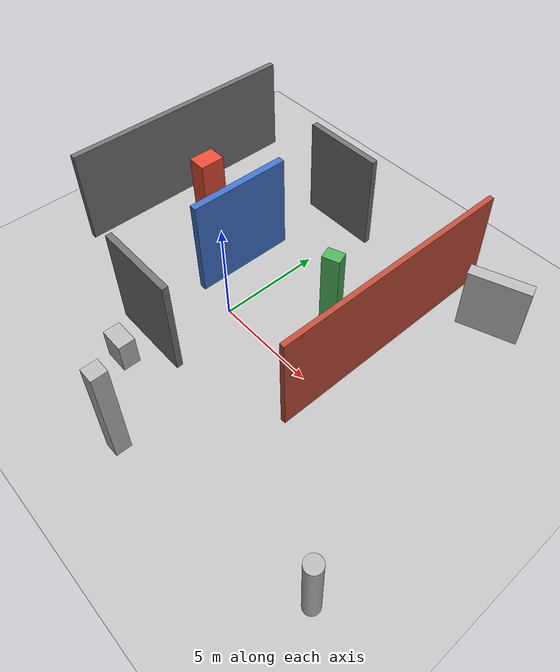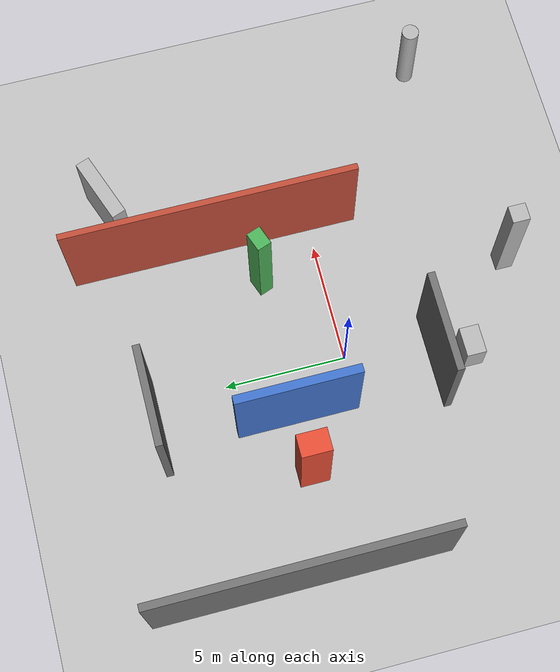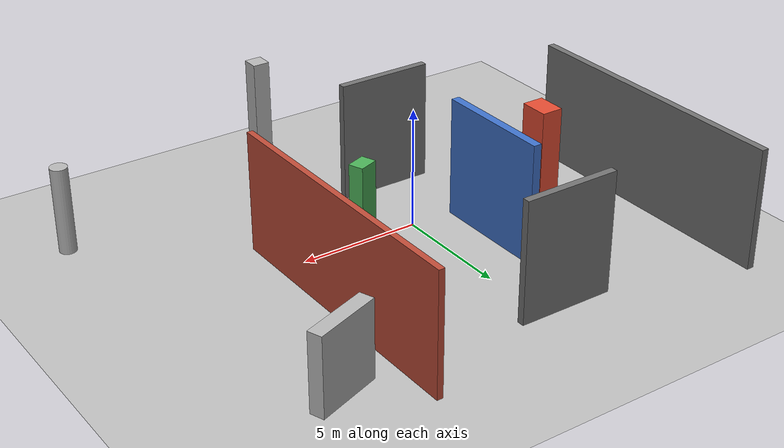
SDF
<sdf version="1.9">
 <world name="occlusion">
  <physics type="ode">
   <max_step_size>0.004</max_step_size>
   <real_time_factor>0.8</real_time_factor>
   <real_time_update_rate>200</real_time_update_rate>
  </physics>
  <gravity>0 0 -9.8</gravity>
  <scene>
   <grid>true</grid>
   <ambient>0.4 0.4 0.4 1</ambient>
   <background>0.72 0.78 0.85 1</background>
   <shadows>true</shadows>
  </scene>
  <model name="ground_plane">
   <static>true</static>
   <link name="link">
    <collision name="collision">
     <geometry><plane><normal>0 0 1</normal><size>200 200</size></plane></geometry>
    </collision>
    <visual name="visual">
     <geometry><plane><normal>0 0 1</normal><size>200 200</size></plane></geometry>
     <material><ambient>0.75 0.75 0.75 1</ambient><diffuse>0.75 0.75 0.75 1</diffuse></material>
    </visual>
   </link>
  </model>
  <model name="occluder">
   <static>true</static>
   <pose>-2.0 2.5 2.5 0 0 0</pose>
   <link name="link">
    <collision name="collision"><geometry><box><size>0.35 5.0 5.0</size></box></geometry></collision>
    <visual name="visual">
     <geometry><box><size>0.35 5.0 5.0</size></box></geometry>
     <material><ambient>0.20 0.35 0.65 1</ambient><diffuse>0.25 0.45 0.80 1</diffuse></material>
    </visual>
   </link>
  </model>
  <model name="hidden_obstacle">
   <static>true</static>
   <pose>-4.3 2.5 2.5 0 0 0</pose>
   <link name="link">
    <collision name="collision"><geometry><box><size>0.9 1.2 5.0</size></box></geometry></collision>
    <visual name="visual">
     <geometry><box><size>0.9 1.2 5.0</size></box></geometry>
     <material><ambient>0.70 0.20 0.15 1</ambient><diffuse>0.90 0.30 0.20 1</diffuse></material>
    </visual>
   </link>
  </model>
  <model name="side_wall">
   <static>true</static>
   <pose>6 4 2.5 0 0 0</pose>
   <link name="link">
    <collision name="collision"><geometry><box><size>0.25 12 5</size></box></geometry></collision>
    <visual name="visual">
     <geometry><box><size>0.25 12 5</size></box></geometry>
     <material><ambient>0.60 0.25 0.20 1</ambient><diffuse>0.75 0.30 0.22 1</diffuse></material>
    </visual>
   </link>
  </model>
  <model name="feature_mid_east">
   <static>true</static>
   <pose>4.0 2.5 2.5 0 0 0.35</pose>
   <link name="link">
    <collision name="collision"><geometry><box><size>0.8 0.6 5.0</size></box></geometry></collision>
    <visual name="visual">
     <geometry><box><size>0.8 0.6 5.0</size></box></geometry>
     <material><ambient>0.25 0.55 0.30 1</ambient><diffuse>0.30 0.70 0.35 1</diffuse></material>
    </visual>
   </link>
  </model>
  <model name="feature_low_west">
   <static>true</static>
   <pose>-1.0 -5.0 0.75 0 0 0</pose>
   <link name="link">
    <collision name="collision"><geometry><box><size>1.2 0.8 1.5</size></box></geometry></collision>
    <visual name="visual"><geometry><box><size>1.2 0.8 1.5</size></box></geometry></visual>
   </link>
  </model>
  <model name="feature_route_north">
   <static>true</static>
   <pose>-1.0 8.0 2.5 0 0 0</pose>
   <link name="link">
    <collision name="collision"><geometry><box><size>4.0 0.3 5.0</size></box></geometry></collision>
    <visual name="visual">
     <geometry><box><size>4.0 0.3 5.0</size></box></geometry>
     <material><ambient>0.35 0.35 0.35 1</ambient><diffuse>0.45 0.45 0.45 1</diffuse></material>
    </visual>
   </link>
  </model>
  <model name="feature_route_south">
   <static>true</static>
   <pose>-1.0 -3.5 2.5 0 0 0</pose>
   <link name="link">
    <collision name="collision"><geometry><box><size>4.0 0.3 5.0</size></box></geometry></collision>
    <visual name="visual">
     <geometry><box><size>4.0 0.3 5.0</size></box></geometry>
     <material><ambient>0.35 0.35 0.35 1</ambient><diffuse>0.45 0.45 0.45 1</diffuse></material>
    </visual>
   </link>
  </model>
  <model name="feature_route_west">
   <static>true</static>
   <pose>-8.5 4.0 2.5 0 0 0</pose>
   <link name="link">
    <collision name="collision"><geometry><box><size>0.3 12.0 5.0</size></box></geometry></collision>
    <visual name="visual">
     <geometry><box><size>0.3 12.0 5.0</size></box></geometry>
     <material><ambient>0.35 0.35 0.35 1</ambient><diffuse>0.45 0.45 0.45 1</diffuse></material>
    </visual>
   </link>
  </model>
  <model name="feature_tall_south">
   <static>true</static>
   <pose>2.5 -7.5 2.5 0 0 0</pose>
   <link name="link">
    <collision name="collision"><geometry><box><size>0.7 0.7 5.0</size></box></geometry></collision>
    <visual name="visual"><geometry><box><size>0.7 0.7 5.0</size></box></geometry></visual>
   </link>
  </model>
  <model name="feature_corner_east">
   <static>true</static>
   <pose>8.5 8.0 1.6 0 0 0.35</pose>
   <link name="link">
    <collision name="collision"><geometry><box><size>2.8 0.6 3.2</size></box></geometry></collision>
    <visual name="visual"><geometry><box><size>2.8 0.6 3.2</size></box></geometry></visual>
   </link>
  </model>
  <model name="feature_pole_north">
   <static>true</static>
   <pose>12.0 -6.0 1.8 0 0 0</pose>
   <link name="link">
    <collision name="collision">
     <geometry><cylinder><radius>0.35</radius><length>3.6</length></cylinder></geometry>
    </collision>
    <visual name="visual">
     <geometry><cylinder><radius>0.35</radius><length>3.6</length></cylinder></geometry>
    </visual>
   </link>
  </model>
  <light name="sunUTC" type="directional">
   <pose>0 0 500 0 0 0</pose>
   <intensity>1</intensity>
   <direction>0.001 0.625 -0.78</direction>
  </light>
  <spherical_coordinates>
   <surface_model>EARTH_WGS84</surface_model>
   <world_frame_orientation>ENU</world_frame_orientation>
   <latitude_deg>10.8231</latitude_deg>
   <longitude_deg>106.6297</longitude_deg>
   <elevation>10</elevation>
  </spherical_coordinates>
 </world>
</sdf>
